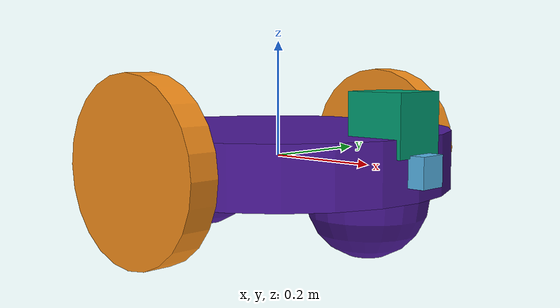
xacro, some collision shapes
<?xml version='1.0'?>

<robot name="my_robot" xmlns:xacro="http://www.ros.org/wiki/xacro">
  <xacro:include filename="$(find my_robot)/urdf/my_robot.gazebo" />

 <link name="robot_footprint"></link>

  <joint name="robot_footprint_joint" type="fixed">
    <origin xyz="0 0 0" rpy="0 0 0" />
    <parent link="robot_footprint"/>
    <child link="chassis" />
  </joint>

  <joint type="continuous" name="left_wheel_hinge">
    <origin xyz="0 0.3 0" rpy="0 0 0"/>
    <child link="left_wheel"/>
    <parent link="chassis"/>
    <axis xyz="0 1 0" rpy="0 0 0"/>
    <limit effort="10000" velocity="1000"/>
    <dynamics damping="0.0" friction="0.0"/>
  </joint>

  <joint type="continuous" name="right_wheel_hinge">
    <origin xyz="0 -0.3 0" rpy="0 0 0"/>
    <child link="right_wheel"/>
    <parent link="chassis"/>
    <axis xyz="0 1 0" rpy="0 0 0"/>
    <limit effort="10000" velocity="1000"/>
    <dynamics damping="0.0" friction="0.0"/>
  </joint>

  <joint type="fixed" name="camera_joint">
    <origin xyz="0.3 0 0" rpy="0 0 0"/>
    <child link="camera_link"/>
    <parent link="chassis"/>
    <axis xyz="0 1 0" rpy="0 0 0"/>
    <dynamics damping="1.0" friction="1.0"/>
  </joint>

  <joint type="fixed" name="camera_optical_joint">
    <origin xyz="0 0 0" rpy="-1.5707 0 -1.5707"/>
    <child link="camera_link_optical"/>
    <parent link="camera_link"/>
  </joint>

  <joint type="fixed" name="hokuyo_joint">
    <origin xyz="0.25 0 .07" rpy="0 0 0"/>
    <child link="hokuyo"/>
    <parent link="chassis"/>
    <axis xyz="0 1 0" rpy="0 0 0"/>
  </joint>

  <gazebo reference="left_wheel">
    <material>Gazebo/Orange</material>
  </gazebo>

  <gazebo reference="right_wheel">
    <material>Gazebo/Orange</material>
  </gazebo>

  <gazebo reference="chassis">
    <material>Gazebo/Indigo</material>
  </gazebo>

  <gazebo reference="camera">
    <material>Gazebo/Yellow</material>
  </gazebo>

  <!-- camera -->
  <link name='camera_link'>

    <inertial>
      <mass value="0.1"/>
      <inertia
          ixx="1e-6" ixy="0" ixz="0"
          iyy="1e-6" iyz="0"
          izz="1e-6"
      />
    </inertial>

    <collision name='collision'>
      <origin xyz="0 0 0" rpy="0 0 0"/>
      <geometry>
	<box size=".05 .05 .05"/>
      </geometry>
    </collision>

    <visual name='camera_link_visual'>
      <origin xyz="0 0 0" rpy="0 0 0"/>
      <geometry>
	<box size=".05 .05 .05"/>
      </geometry>
    </visual>

  </link>

  <link name='hokuyo'>

    <inertial>
      <mass value="1e-5"/>
      <inertia
          ixx="1e-6" ixy="0" ixz="0"
          iyy="1e-6" iyz="0"
          izz="1e-6"
      />
    </inertial>

    <collision name='collision'>
      <origin xyz="0 0 0" rpy="0 0 0"/>
      <geometry>
	<box size=".1 .1 .1"/>
      </geometry>
    </collision>

    <visual name='hokuyo_visual'>
      <origin xyz="0 0 0" rpy="0 0 0"/>
      <geometry>
	<mesh filename="package://my_robot/meshes/hokuyo.dae"/>
      </geometry>
    </visual>

  </link>

  <link name="camera_link_optical">
  </link>

  <link name='left_wheel'>

    <inertial>
      <mass value="5.0"/>
      <inertia
          ixx="0.1" ixy="0" ixz="0"
          iyy="0.1" iyz="0"
          izz="0.1"
      />
    </inertial>

    <collision name='collision'>
      <origin xyz="0 0 0" rpy="0 1.5707 1.5707"/>
      <geometry>
	<cylinder radius="0.15" length="0.05"/>
      </geometry>
    </collision>

    <visual name='left_wheel_visual'>
      <origin xyz="0 0 0" rpy="0 1.5707 1.5707"/>
      <geometry>
	<cylinder radius="0.15" length="0.05"/>
      </geometry>
    </visual>

  </link>

  <link name='right_wheel'>

    <inertial>
      <mass value="5.0"/>
      <inertia
          ixx="0.1" ixy="0" ixz="0"
          iyy="0.1" iyz="0"
          izz="0.1"
	  />
    </inertial>

    <collision name='collision'>
      <origin xyz="0 0 0" rpy="0 1.5707 1.5707"/>
      <geometry>
	<cylinder radius="0.15" length="0.05"/>
      </geometry>
    </collision>

    <visual name='right_wheel_visual'>
      <origin xyz="0 0 0" rpy="0 1.5707 1.5707"/>
      <geometry>
	<cylinder radius="0.15" length="0.05"/>
      </geometry>
    </visual>

  </link>

  <link name='chassis'>
    <pose>0 0 0.1 0 0 0</pose>

    <inertial>
      <mass value="15.0"/>
      <origin xyz="0.0 0 0" rpy=" 0 0 0"/>
      <inertia
          ixx="0.1" ixy="0" ixz="0"
          iyy="0.1" iyz="0"
          izz="0.1"
      />
    </inertial>

    <collision name='collision'>
      <origin xyz="0 0 0" rpy=" 0 0 0"/>
      <geometry>
        <cylinder radius="0.4" length="0.1"/>
      </geometry>
    </collision>

    <visual name='chassis_visual'>
      <origin xyz="0 0 0" rpy=" 0 0 0"/>
      <geometry>
        <cylinder radius="0.3" length="0.1"/>
      </geometry>
    </visual>

    <collision name='back_caster_collision'>
      <origin xyz="-0.20 0 -0.05" rpy=" 0 0 0"/>
      <geometry>
        <sphere radius="0.1"/>
      </geometry>
    </collision>

    <visual name='back_caster_visual'>
      <origin xyz="-0.20 0 -0.05" rpy=" 0 0 0"/>
      <geometry>
        <sphere radius="0.1"/>
      </geometry>
    </visual>

    <collision name='front_caster_collision'>
      <origin xyz="0.20 0 -0.05" rpy=" 0 0 0"/>
      <geometry>
        <sphere radius="0.1"/>
      </geometry>
    </collision>

    <visual name='front_caster_visual'>
      <origin xyz="0.20 0 -0.05" rpy=" 0 0 0"/>
      <geometry>
        <sphere radius="0.1"/>
      </geometry>
    </visual>

  </link>

</robot>
